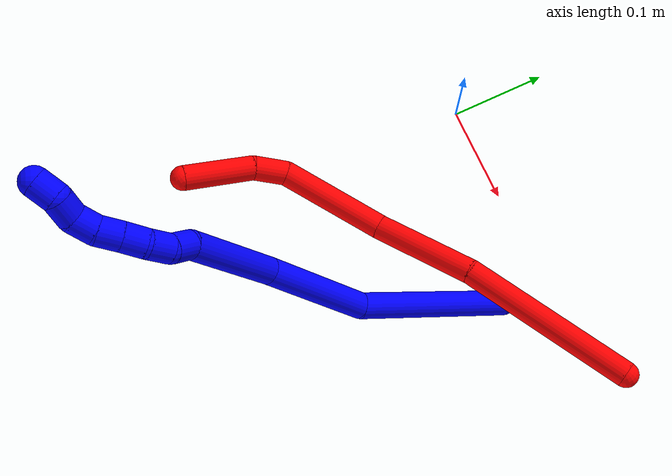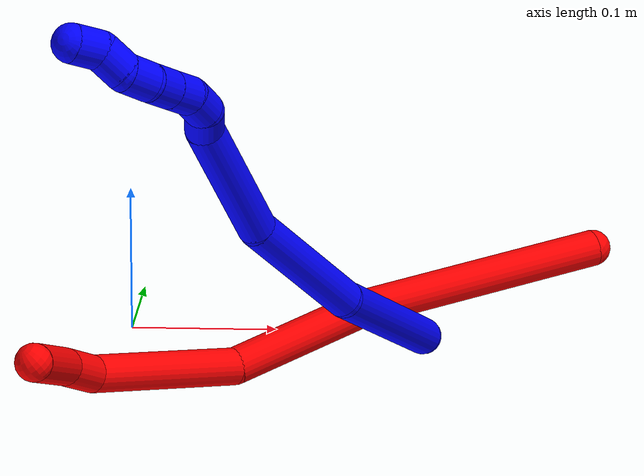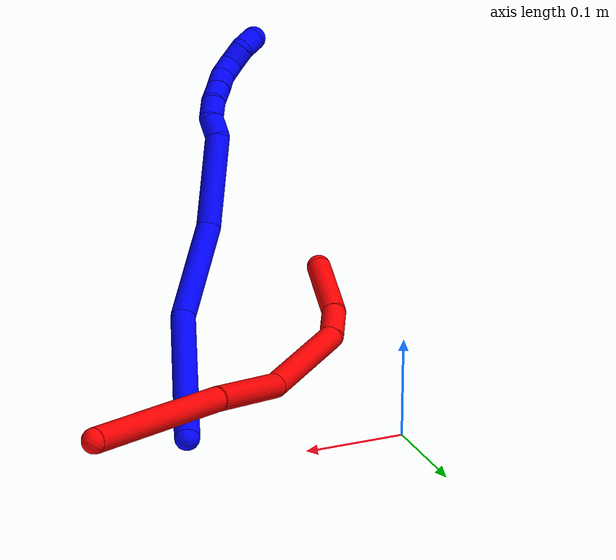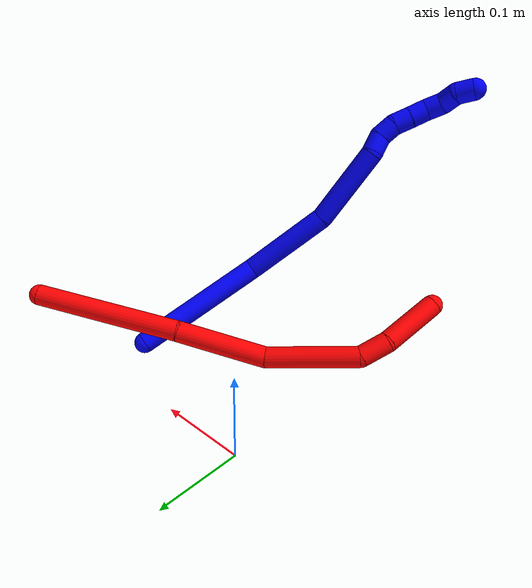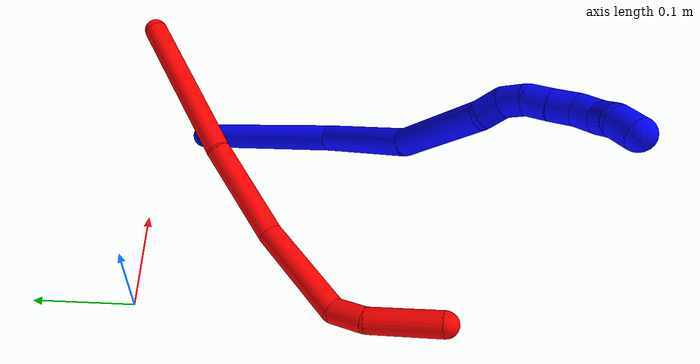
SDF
<sdf version="1.7">
 <world name="default">
  <plugin name="TubeGeneratorPlugin" filename="libtube_generator_plugin.so"/>
  <model name="photoneo_s_sensor">
   <static>1</static>
   <pose>0 0 2 1.57079 1.57079 3.14159</pose>
   <link name="link">
    <inertial><mass>0.1</mass></inertial>
    <sensor name="sensor" type="depth">
     <update_rate>30</update_rate>
     <camera>
      <horizontal_fov>1.22</horizontal_fov>
      <image><width>1920</width><height>1200</height><format>B8G8R8</format></image>
      <clip><near>0.1</near><far>4</far></clip>
      <depth_camera><output>points</output></depth_camera>
     </camera>
     <plugin name="camera_plugin" filename="libgazebo_ros_depth_camera.so">
      <baseline>0.2</baseline>
      <alwaysOn>1</alwaysOn>
      <updateRate>0.0</updateRate>
      <cameraName>camera_ir</cameraName>
      <imageTopicName>/camera/color/image_raw</imageTopicName>
      <cameraInfoTopicName>/camera/color/camera_info</cameraInfoTopicName>
      <depthImageTopicName>/camera/depth/image_raw</depthImageTopicName>
      <depthImageCameraInfoTopicName>/camera/depth/camera_info</depthImageCameraInfoTopicName>
      <pointCloudTopicName>/camera/depth/points</pointCloudTopicName>
      <frameName>fr_optical</frameName>
      <pointCloudCutoff>0.1</pointCloudCutoff>
      <pointCloudCutoffMax>2.0</pointCloudCutoffMax>
      <distortionK1>0</distortionK1>
      <distortionK2>0</distortionK2>
      <distortionK3>0</distortionK3>
      <distortionT1>0</distortionT1>
      <distortionT2>0</distortionT2>
      <CxPrime>0</CxPrime>
      <Cx>0</Cx>
      <Cy>0</Cy>
      <focalLength>0</focalLength>
      <hackBaseline>0</hackBaseline>
     </plugin>
    </sensor>
   </link>
  </model>
  <gravity>0 0 -9.8</gravity>
  <magnetic_field>6e-06 2.3e-05 -4.2e-05</magnetic_field>
  <atmosphere type="adiabatic"/>
  <physics name="default_physics" default="0" type="ode">
   <max_step_size>0.003</max_step_size>
   <real_time_factor>1</real_time_factor>
   <real_time_update_rate>1000</real_time_update_rate>
   <max_contacts>10000</max_contacts>
   <ode>
    <solver>
     <type>quick</type>
     <iters>100</iters>
     <sor>1.3</sor>
     <use_dynamic_moi_rescaling>0</use_dynamic_moi_rescaling>
    </solver>
    <constraints>
     <contact_max_correcting_vel>0</contact_max_correcting_vel>
     <contact_surface_layer>0.001</contact_surface_layer>
     <cfm>0</cfm>
     <erp>0.2</erp>
    </constraints>
   </ode>
  </physics>
  <scene><ambient>0.4 0.4 0.4 1</ambient><background>0.7 0.7 0.7 1</background><shadows>0</shadows></scene>
  <audio><device>default</device></audio>
  <spherical_coordinates>
   <surface_model>EARTH_WGS84</surface_model>
   <latitude_deg>0</latitude_deg>
   <longitude_deg>0</longitude_deg>
   <elevation>0</elevation>
   <heading_deg>0</heading_deg>
  </spherical_coordinates>
  <model name="bin">
   <static>1</static>
   <link name="bottom">
    <collision name="collision-bottom">
     <pose>0 0 -0.01 0 -0 0</pose>
     <geometry><box><size>0.8 0.6 0.02</size></box></geometry>
     <surface>
      <friction><ode><mu>100</mu><mu2>100</mu2></ode></friction>
      <contact><collide_bitmask>65535</collide_bitmask></contact>
     </surface>
    </collision>
   </link>
   <link name="west_wall">
    <collision name="collision-west_wall">
     <pose>-0.41 0 0.1 0 -0 0</pose>
     <geometry><box><size>0.02 0.6 0.2</size></box></geometry>
     <surface>
      <friction><ode><mu>100</mu><mu2>100</mu2></ode></friction>
      <contact><collide_bitmask>65535</collide_bitmask></contact>
     </surface>
    </collision>
   </link>
   <link name="east_wall">
    <collision name="collision-east_wall">
     <pose>0.41 0 0.1 0 -0 0</pose>
     <geometry><box><size>0.02 0.6 0.2</size></box></geometry>
     <surface>
      <friction><ode><mu>100</mu><mu2>100</mu2></ode></friction>
      <contact><collide_bitmask>65535</collide_bitmask></contact>
     </surface>
    </collision>
   </link>
   <link name="south_wall">
    <collision name="collision-south_wall">
     <pose>0 -0.31 0.1 0 -0 0</pose>
     <geometry><box><size>0.8 0.02 0.2</size></box></geometry>
     <surface>
      <friction><ode><mu>100</mu><mu2>100</mu2></ode></friction>
      <contact><collide_bitmask>65535</collide_bitmask></contact>
     </surface>
    </collision>
   </link>
   <link name="north_wall">
    <collision name="collision-north_wall">
     <pose>0 0.31 0.1 0 -0 0</pose>
     <geometry><box><size>0.8 0.02 0.2</size></box></geometry>
     <surface>
      <friction><ode><mu>100</mu><mu2>100</mu2></ode></friction>
      <contact><collide_bitmask>65535</collide_bitmask></contact>
     </surface>
    </collision>
   </link>
  </model>
  <model name="1">
   <static>0</static>
   <link name="1">
    <collision name="collision-cylinder-e_1_1_4">
     <pose>-0.000902 -0.000366 0.078689 0.004654 -0.011465 -2.7e-05</pose>
     <geometry><cylinder><radius>0.0125</radius><length>0.157391</length></cylinder></geometry>
     <surface>
      <friction><ode><mu>1.16</mu><mu2>1.16</mu2><slip1>0</slip1><slip2>0</slip2></ode></friction>
      <contact><ode><kp>1e+06</kp><kd>1</kd><max_vel>0</max_vel><min_depth>0.001</min_depth></ode></contact>
     </surface>
    </collision>
    <visual name="visual-cylinder-e_1_1_4">
     <pose>-0.000902 -0.000366 0.078689 0.004654 -0.011465 -2.7e-05</pose>
     <geometry><cylinder><radius>0.0125</radius><length>0.157391</length></cylinder></geometry>
     <material><ambient>0 0 1 1</ambient></material>
    </visual>
    <collision name="collision-cylinder-e_2_4_5">
     <pose>-0.005288 -0.020066 0.206226 0.37687 -0.066211 -0.012631</pose>
     <geometry><cylinder><radius>0.0125</radius><length>0.105298</length></cylinder></geometry>
     <surface>
      <friction><ode><mu>1.16</mu><mu2>1.16</mu2><slip1>0</slip1><slip2>0</slip2></ode></friction>
      <contact><ode><kp>1e+06</kp><kd>1</kd><max_vel>0</max_vel><min_depth>0.001</min_depth></ode></contact>
     </surface>
    </collision>
    <visual name="visual-cylinder-e_2_4_5">
     <pose>-0.005288 -0.020066 0.206226 0.37687 -0.066211 -0.012631</pose>
     <geometry><cylinder><radius>0.0125</radius><length>0.105298</length></cylinder></geometry>
     <material><ambient>0 0 1 1</ambient></material>
    </visual>
    <collision name="collision-cylinder-e_3_5_6">
     <pose>-0.025183 -0.057482 0.296159 0.414621 -0.350508 -0.074453</pose>
     <geometry><cylinder><radius>0.0125</radius><length>0.095593</length></cylinder></geometry>
     <surface>
      <friction><ode><mu>1.16</mu><mu2>1.16</mu2><slip1>0</slip1><slip2>0</slip2></ode></friction>
      <contact><ode><kp>1e+06</kp><kd>1</kd><max_vel>0</max_vel><min_depth>0.001</min_depth></ode></contact>
     </surface>
    </collision>
    <visual name="visual-cylinder-e_3_5_6">
     <pose>-0.025183 -0.057482 0.296159 0.414621 -0.350508 -0.074453</pose>
     <geometry><cylinder><radius>0.0125</radius><length>0.095593</length></cylinder></geometry>
     <material><ambient>0 0 1 1</ambient></material>
    </visual>
    <collision name="collision-cylinder-e_4_6_7">
     <pose>-0.046887 -0.075601 0.346412 0.003782 -0.523548 -0.001013</pose>
     <geometry><cylinder><radius>0.0125</radius><length>0.021167</length></cylinder></geometry>
     <surface>
      <friction><ode><mu>1.16</mu><mu2>1.16</mu2><slip1>0</slip1><slip2>0</slip2></ode></friction>
      <contact><ode><kp>1e+06</kp><kd>1</kd><max_vel>0</max_vel><min_depth>0.001</min_depth></ode></contact>
     </surface>
    </collision>
    <visual name="visual-cylinder-e_4_6_7">
     <pose>-0.046887 -0.075601 0.346412 0.003782 -0.523548 -0.001013</pose>
     <geometry><cylinder><radius>0.0125</radius><length>0.021167</length></cylinder></geometry>
     <material><ambient>0 0 1 1</ambient></material>
    </visual>
    <collision name="collision-cylinder-e_5_7_8">
     <pose>-0.053558 -0.07821 0.365428 0.255675 -0.134673 -0.017337</pose>
     <geometry><cylinder><radius>0.0125</radius><length>0.020549</length></cylinder></geometry>
     <surface>
      <friction><ode><mu>1.16</mu><mu2>1.16</mu2><slip1>0</slip1><slip2>0</slip2></ode></friction>
      <contact><ode><kp>1e+06</kp><kd>1</kd><max_vel>0</max_vel><min_depth>0.001</min_depth></ode></contact>
     </surface>
    </collision>
    <visual name="visual-cylinder-e_5_7_8">
     <pose>-0.053558 -0.07821 0.365428 0.255675 -0.134673 -0.017337</pose>
     <geometry><cylinder><radius>0.0125</radius><length>0.020549</length></cylinder></geometry>
     <material><ambient>0 0 1 1</ambient></material>
    </visual>
    <collision name="collision-cylinder-e_6_8_9">
     <pose>-0.053314 -0.083059 0.384881 0.232548 0.162987 0.019079</pose>
     <geometry><cylinder><radius>0.0125</radius><length>0.02</length></cylinder></geometry>
     <surface>
      <friction><ode><mu>1.16</mu><mu2>1.16</mu2><slip1>0</slip1><slip2>0</slip2></ode></friction>
      <contact><ode><kp>1e+06</kp><kd>1</kd><max_vel>0</max_vel><min_depth>0.001</min_depth></ode></contact>
     </surface>
    </collision>
    <visual name="visual-cylinder-e_6_8_9">
     <pose>-0.053314 -0.083059 0.384881 0.232548 0.162987 0.019079</pose>
     <geometry><cylinder><radius>0.0125</radius><length>0.02</length></cylinder></geometry>
     <material><ambient>0 0 1 1</ambient></material>
    </visual>
    <collision name="collision-cylinder-e_7_9_10">
     <pose>-0.050307 -0.087329 0.404184 0.202943 0.138952 0.014171</pose>
     <geometry><cylinder><radius>0.0125</radius><length>0.020001</length></cylinder></geometry>
     <surface>
      <friction><ode><mu>1.16</mu><mu2>1.16</mu2><slip1>0</slip1><slip2>0</slip2></ode></friction>
      <contact><ode><kp>1e+06</kp><kd>1</kd><max_vel>0</max_vel><min_depth>0.001</min_depth></ode></contact>
     </surface>
    </collision>
    <visual name="visual-cylinder-e_7_9_10">
     <pose>-0.050307 -0.087329 0.404184 0.202943 0.138952 0.014171</pose>
     <geometry><cylinder><radius>0.0125</radius><length>0.020001</length></cylinder></geometry>
     <material><ambient>0 0 1 1</ambient></material>
    </visual>
    <collision name="collision-cylinder-e_8_10_11">
     <pose>-0.046931 -0.093701 0.422654 0.462759 0.200409 0.047366</pose>
     <geometry><cylinder><radius>0.0125</radius><length>0.02</length></cylinder></geometry>
     <surface>
      <friction><ode><mu>1.16</mu><mu2>1.16</mu2><slip1>0</slip1><slip2>0</slip2></ode></friction>
      <contact><ode><kp>1e+06</kp><kd>1</kd><max_vel>0</max_vel><min_depth>0.001</min_depth></ode></contact>
     </surface>
    </collision>
    <visual name="visual-cylinder-e_8_10_11">
     <pose>-0.046931 -0.093701 0.422654 0.462759 0.200409 0.047366</pose>
     <geometry><cylinder><radius>0.0125</radius><length>0.02</length></cylinder></geometry>
     <material><ambient>0 0 1 1</ambient></material>
    </visual>
    <collision name="collision-cylinder-e_9_11_12">
     <pose>-0.045568 -0.105846 0.437687 0.892347 -0.062875 -0.030084</pose>
     <geometry><cylinder><radius>0.0125</radius><length>0.020001</length></cylinder></geometry>
     <surface>
      <friction><ode><mu>1.16</mu><mu2>1.16</mu2><slip1>0</slip1><slip2>0</slip2></ode></friction>
      <contact><ode><kp>1e+06</kp><kd>1</kd><max_vel>0</max_vel><min_depth>0.001</min_depth></ode></contact>
     </surface>
    </collision>
    <visual name="visual-cylinder-e_9_11_12">
     <pose>-0.045568 -0.105846 0.437687 0.892347 -0.062875 -0.030084</pose>
     <geometry><cylinder><radius>0.0125</radius><length>0.020001</length></cylinder></geometry>
     <material><ambient>0 0 1 1</ambient></material>
    </visual>
    <collision name="collision-cylinder-e_10_12_2">
     <pose>-0.04276 -0.118747 0.451815 0.578046 0.350869 0.105317</pose>
     <geometry><cylinder><radius>0.0125</radius><length>0.02</length></cylinder></geometry>
     <surface>
      <friction><ode><mu>1.16</mu><mu2>1.16</mu2><slip1>0</slip1><slip2>0</slip2></ode></friction>
      <contact><ode><kp>1e+06</kp><kd>1</kd><max_vel>0</max_vel><min_depth>0.001</min_depth></ode></contact>
     </surface>
    </collision>
    <visual name="visual-cylinder-e_10_12_2">
     <pose>-0.04276 -0.118747 0.451815 0.578046 0.350869 0.105317</pose>
     <geometry><cylinder><radius>0.0125</radius><length>0.02</length></cylinder></geometry>
     <material><ambient>0 0 1 1</ambient></material>
    </visual>
    <collision name="collision-sphere-2">
     <pose>-0.039323 -0.123878 0.45968 0 -0 0</pose>
     <geometry><sphere><radius>0.0125</radius></sphere></geometry>
     <surface>
      <friction><ode><mu>1.16</mu><mu2>1.16</mu2><slip1>0</slip1><slip2>0</slip2></ode></friction>
      <contact><ode><kp>1e+06</kp><kd>1</kd><max_vel>0</max_vel><min_depth>0.001</min_depth></ode></contact>
     </surface>
    </collision>
    <visual name="visual-sphere-2">
     <pose>-0.039323 -0.123878 0.45968 0 -0 0</pose>
     <geometry><sphere><radius>0.0125</radius></sphere></geometry>
     <material><ambient>0 0 1 1</ambient></material>
    </visual>
    <collision name="collision-sphere-12">
     <pose>-0.046197 -0.113616 0.44395 0 -0 0</pose>
     <geometry><sphere><radius>0.0125</radius></sphere></geometry>
     <surface>
      <friction><ode><mu>1.16</mu><mu2>1.16</mu2><slip1>0</slip1><slip2>0</slip2></ode></friction>
      <contact><ode><kp>1e+06</kp><kd>1</kd><max_vel>0</max_vel><min_depth>0.001</min_depth></ode></contact>
     </surface>
    </collision>
    <visual name="visual-sphere-12">
     <pose>-0.046197 -0.113616 0.44395 0 -0 0</pose>
     <geometry><sphere><radius>0.0125</radius></sphere></geometry>
     <material><ambient>0 0 1 1</ambient></material>
    </visual>
    <collision name="collision-sphere-11">
     <pose>-0.04494 -0.098075 0.431423 0 -0 0</pose>
     <geometry><sphere><radius>0.0125</radius></sphere></geometry>
     <surface>
      <friction><ode><mu>1.16</mu><mu2>1.16</mu2><slip1>0</slip1><slip2>0</slip2></ode></friction>
      <contact><ode><kp>1e+06</kp><kd>1</kd><max_vel>0</max_vel><min_depth>0.001</min_depth></ode></contact>
     </surface>
    </collision>
    <visual name="visual-sphere-11">
     <pose>-0.04494 -0.098075 0.431423 0 -0 0</pose>
     <geometry><sphere><radius>0.0125</radius></sphere></geometry>
     <material><ambient>0 0 1 1</ambient></material>
    </visual>
    <collision name="collision-sphere-10">
     <pose>-0.048922 -0.089326 0.413884 0 -0 0</pose>
     <geometry><sphere><radius>0.0125</radius></sphere></geometry>
     <surface>
      <friction><ode><mu>1.16</mu><mu2>1.16</mu2><slip1>0</slip1><slip2>0</slip2></ode></friction>
      <contact><ode><kp>1e+06</kp><kd>1</kd><max_vel>0</max_vel><min_depth>0.001</min_depth></ode></contact>
     </surface>
    </collision>
    <visual name="visual-sphere-10">
     <pose>-0.048922 -0.089326 0.413884 0 -0 0</pose>
     <geometry><sphere><radius>0.0125</radius></sphere></geometry>
     <material><ambient>0 0 1 1</ambient></material>
    </visual>
    <collision name="collision-sphere-9">
     <pose>-0.051692 -0.085333 0.394483 0 -0 0</pose>
     <geometry><sphere><radius>0.0125</radius></sphere></geometry>
     <surface>
      <friction><ode><mu>1.16</mu><mu2>1.16</mu2><slip1>0</slip1><slip2>0</slip2></ode></friction>
      <contact><ode><kp>1e+06</kp><kd>1</kd><max_vel>0</max_vel><min_depth>0.001</min_depth></ode></contact>
     </surface>
    </collision>
    <visual name="visual-sphere-9">
     <pose>-0.051692 -0.085333 0.394483 0 -0 0</pose>
     <geometry><sphere><radius>0.0125</radius></sphere></geometry>
     <material><ambient>0 0 1 1</ambient></material>
    </visual>
    <collision name="collision-sphere-4">
     <pose>-0.001804 -0.000733 0.157379 0 -0 0</pose>
     <geometry><sphere><radius>0.0125</radius></sphere></geometry>
     <surface>
      <friction><ode><mu>1.16</mu><mu2>1.16</mu2><slip1>0</slip1><slip2>0</slip2></ode></friction>
      <contact><ode><kp>1e+06</kp><kd>1</kd><max_vel>0</max_vel><min_depth>0.001</min_depth></ode></contact>
     </surface>
    </collision>
    <visual name="visual-sphere-4">
     <pose>-0.001804 -0.000733 0.157379 0 -0 0</pose>
     <geometry><sphere><radius>0.0125</radius></sphere></geometry>
     <material><ambient>0 0 1 1</ambient></material>
    </visual>
    <collision name="collision-sphere-1">
     <geometry><sphere><radius>0.0125</radius></sphere></geometry>
     <surface>
      <friction><ode><mu>1.16</mu><mu2>1.16</mu2><slip1>0</slip1><slip2>0</slip2></ode></friction>
      <contact><ode><kp>1e+06</kp><kd>1</kd><max_vel>0</max_vel><min_depth>0.001</min_depth></ode></contact>
     </surface>
    </collision>
    <visual name="visual-sphere-1">
     <geometry><sphere><radius>0.0125</radius></sphere></geometry>
     <material><ambient>0 0 1 1</ambient></material>
    </visual>
    <collision name="collision-sphere-8">
     <pose>-0.054937 -0.080785 0.375279 0 -0 0</pose>
     <geometry><sphere><radius>0.0125</radius></sphere></geometry>
     <surface>
      <friction><ode><mu>1.16</mu><mu2>1.16</mu2><slip1>0</slip1><slip2>0</slip2></ode></friction>
      <contact><ode><kp>1e+06</kp><kd>1</kd><max_vel>0</max_vel><min_depth>0.001</min_depth></ode></contact>
     </surface>
    </collision>
    <visual name="visual-sphere-8">
     <pose>-0.054937 -0.080785 0.375279 0 -0 0</pose>
     <geometry><sphere><radius>0.0125</radius></sphere></geometry>
     <material><ambient>0 0 1 1</ambient></material>
    </visual>
    <collision name="collision-sphere-5">
     <pose>-0.008771 -0.039399 0.255073 0 -0 0</pose>
     <geometry><sphere><radius>0.0125</radius></sphere></geometry>
     <surface>
      <friction><ode><mu>1.16</mu><mu2>1.16</mu2><slip1>0</slip1><slip2>0</slip2></ode></friction>
      <contact><ode><kp>1e+06</kp><kd>1</kd><max_vel>0</max_vel><min_depth>0.001</min_depth></ode></contact>
     </surface>
    </collision>
    <visual name="visual-sphere-5">
     <pose>-0.008771 -0.039399 0.255073 0 -0 0</pose>
     <geometry><sphere><radius>0.0125</radius></sphere></geometry>
     <material><ambient>0 0 1 1</ambient></material>
    </visual>
    <collision name="collision-sphere-6">
     <pose>-0.041595 -0.075566 0.337246 0 -0 0</pose>
     <geometry><sphere><radius>0.0125</radius></sphere></geometry>
     <surface>
      <friction><ode><mu>1.16</mu><mu2>1.16</mu2><slip1>0</slip1><slip2>0</slip2></ode></friction>
      <contact><ode><kp>1e+06</kp><kd>1</kd><max_vel>0</max_vel><min_depth>0.001</min_depth></ode></contact>
     </surface>
    </collision>
    <visual name="visual-sphere-6">
     <pose>-0.041595 -0.075566 0.337246 0 -0 0</pose>
     <geometry><sphere><radius>0.0125</radius></sphere></geometry>
     <material><ambient>0 0 1 1</ambient></material>
    </visual>
    <collision name="collision-sphere-7">
     <pose>-0.052178 -0.075635 0.355578 0 -0 0</pose>
     <geometry><sphere><radius>0.0125</radius></sphere></geometry>
     <surface>
      <friction><ode><mu>1.16</mu><mu2>1.16</mu2><slip1>0</slip1><slip2>0</slip2></ode></friction>
      <contact><ode><kp>1e+06</kp><kd>1</kd><max_vel>0</max_vel><min_depth>0.001</min_depth></ode></contact>
     </surface>
    </collision>
    <visual name="visual-sphere-7">
     <pose>-0.052178 -0.075635 0.355578 0 -0 0</pose>
     <geometry><sphere><radius>0.0125</radius></sphere></geometry>
     <material><ambient>0 0 1 1</ambient></material>
    </visual>
    <inertial>
     <pose>-0.019954 -0.041293 0.238556 0 -0 0</pose>
     <mass>0.5</mass>
     <inertia>
      <ixx>0.000504</ixx>
      <ixy>0</ixy>
      <ixz>0</ixz>
      <iyy>0.000489</iyy>
      <iyz>0</iyz>
      <izz>0.000144</izz>
     </inertia>
    </inertial>
   </link>
   <pose>0.2031 -0.048624 0.011481 -0.909413 0.853729 -2.95156</pose>
  </model>
  <model name="2">
   <static>0</static>
   <link name="2">
    <collision name="collision-cylinder-e_1_1_4">
     <pose>-0.046311 -0.060264 -0.044557 2.20746 -0.553495 -1.02591</pose>
     <geometry><cylinder><radius>0.0125</radius><length>0.176202</length></cylinder></geometry>
     <surface>
      <friction><ode><mu>1.16</mu><mu2>1.16</mu2><slip1>0</slip1><slip2>0</slip2></ode></friction>
      <contact><ode><kp>1e+06</kp><kd>1</kd><max_vel>0</max_vel><min_depth>0.001</min_depth></ode></contact>
     </surface>
    </collision>
    <visual name="visual-cylinder-e_1_1_4">
     <pose>-0.046311 -0.060264 -0.044557 2.20746 -0.553495 -1.02591</pose>
     <geometry><cylinder><radius>0.0125</radius><length>0.176202</length></cylinder></geometry>
     <material><ambient>1 0 0 1</ambient></material>
    </visual>
    <collision name="collision-cylinder-e_2_4_5">
     <pose>-0.12607 -0.156358 -0.109745 2.09324 -0.680176 -1.09846</pose>
     <geometry><cylinder><radius>0.0125</radius><length>0.106361</length></cylinder></geometry>
     <surface>
      <friction><ode><mu>1.16</mu><mu2>1.16</mu2><slip1>0</slip1><slip2>0</slip2></ode></friction>
      <contact><ode><kp>1e+06</kp><kd>1</kd><max_vel>0</max_vel><min_depth>0.001</min_depth></ode></contact>
     </surface>
    </collision>
    <visual name="visual-cylinder-e_2_4_5">
     <pose>-0.12607 -0.156358 -0.109745 2.09324 -0.680176 -1.09846</pose>
     <geometry><cylinder><radius>0.0125</radius><length>0.106361</length></cylinder></geometry>
     <material><ambient>1 0 0 1</ambient></material>
    </visual>
    <collision name="collision-cylinder-e_3_5_6">
     <pose>-0.189862 -0.218988 -0.167704 2.5189 -0.583636 -1.50197</pose>
     <geometry><cylinder><radius>0.0125</radius><length>0.110135</length></cylinder></geometry>
     <surface>
      <friction><ode><mu>1.16</mu><mu2>1.16</mu2><slip1>0</slip1><slip2>0</slip2></ode></friction>
      <contact><ode><kp>1e+06</kp><kd>1</kd><max_vel>0</max_vel><min_depth>0.001</min_depth></ode></contact>
     </surface>
    </collision>
    <visual name="visual-cylinder-e_3_5_6">
     <pose>-0.189862 -0.218988 -0.167704 2.5189 -0.583636 -1.50197</pose>
     <geometry><cylinder><radius>0.0125</radius><length>0.110135</length></cylinder></geometry>
     <material><ambient>1 0 0 1</ambient></material>
    </visual>
    <collision name="collision-cylinder-e_4_6_7">
     <pose>-0.232145 -0.245599 -0.217807 -3.12673 -0.751418 3.10392</pose>
     <geometry><cylinder><radius>0.0125</radius><length>0.03497</length></cylinder></geometry>
     <surface>
      <friction><ode><mu>1.16</mu><mu2>1.16</mu2><slip1>0</slip1><slip2>0</slip2></ode></friction>
      <contact><ode><kp>1e+06</kp><kd>1</kd><max_vel>0</max_vel><min_depth>0.001</min_depth></ode></contact>
     </surface>
    </collision>
    <visual name="visual-cylinder-e_4_6_7">
     <pose>-0.232145 -0.245599 -0.217807 -3.12673 -0.751418 3.10392</pose>
     <geometry><cylinder><radius>0.0125</radius><length>0.03497</length></cylinder></geometry>
     <material><ambient>1 0 0 1</ambient></material>
    </visual>
    <collision name="collision-cylinder-e_5_7_2">
     <pose>-0.27313 -0.237427 -0.250592 -2.76201 -0.932676 2.41244</pose>
     <geometry><cylinder><radius>0.0125</radius><length>0.072332</length></cylinder></geometry>
     <surface>
      <friction><ode><mu>1.16</mu><mu2>1.16</mu2><slip1>0</slip1><slip2>0</slip2></ode></friction>
      <contact><ode><kp>1e+06</kp><kd>1</kd><max_vel>0</max_vel><min_depth>0.001</min_depth></ode></contact>
     </surface>
    </collision>
    <visual name="visual-cylinder-e_5_7_2">
     <pose>-0.27313 -0.237427 -0.250592 -2.76201 -0.932676 2.41244</pose>
     <geometry><cylinder><radius>0.0125</radius><length>0.072332</length></cylinder></geometry>
     <material><ambient>1 0 0 1</ambient></material>
    </visual>
    <collision name="collision-sphere-2">
     <pose>-0.302179 -0.229444 -0.270602 0 -0 0</pose>
     <geometry><sphere><radius>0.0125</radius></sphere></geometry>
     <surface>
      <friction><ode><mu>1.16</mu><mu2>1.16</mu2><slip1>0</slip1><slip2>0</slip2></ode></friction>
      <contact><ode><kp>1e+06</kp><kd>1</kd><max_vel>0</max_vel><min_depth>0.001</min_depth></ode></contact>
     </surface>
    </collision>
    <visual name="visual-sphere-2">
     <pose>-0.302179 -0.229444 -0.270602 0 -0 0</pose>
     <geometry><sphere><radius>0.0125</radius></sphere></geometry>
     <material><ambient>1 0 0 1</ambient></material>
    </visual>
    <collision name="collision-sphere-7">
     <pose>-0.244081 -0.245409 -0.230582 0 -0 0</pose>
     <geometry><sphere><radius>0.0125</radius></sphere></geometry>
     <surface>
      <friction><ode><mu>1.16</mu><mu2>1.16</mu2><slip1>0</slip1><slip2>0</slip2></ode></friction>
      <contact><ode><kp>1e+06</kp><kd>1</kd><max_vel>0</max_vel><min_depth>0.001</min_depth></ode></contact>
     </surface>
    </collision>
    <visual name="visual-sphere-7">
     <pose>-0.244081 -0.245409 -0.230582 0 -0 0</pose>
     <geometry><sphere><radius>0.0125</radius></sphere></geometry>
     <material><ambient>1 0 0 1</ambient></material>
    </visual>
    <collision name="collision-sphere-6">
     <pose>-0.220208 -0.245789 -0.205032 0 -0 0</pose>
     <geometry><sphere><radius>0.0125</radius></sphere></geometry>
     <surface>
      <friction><ode><mu>1.16</mu><mu2>1.16</mu2><slip1>0</slip1><slip2>0</slip2></ode></friction>
      <contact><ode><kp>1e+06</kp><kd>1</kd><max_vel>0</max_vel><min_depth>0.001</min_depth></ode></contact>
     </surface>
    </collision>
    <visual name="visual-sphere-6">
     <pose>-0.220208 -0.245789 -0.205032 0 -0 0</pose>
     <geometry><sphere><radius>0.0125</radius></sphere></geometry>
     <material><ambient>1 0 0 1</ambient></material>
    </visual>
    <collision name="collision-sphere-5">
     <pose>-0.159517 -0.192188 -0.130377 0 -0 0</pose>
     <geometry><sphere><radius>0.0125</radius></sphere></geometry>
     <surface>
      <friction><ode><mu>1.16</mu><mu2>1.16</mu2><slip1>0</slip1><slip2>0</slip2></ode></friction>
      <contact><ode><kp>1e+06</kp><kd>1</kd><max_vel>0</max_vel><min_depth>0.001</min_depth></ode></contact>
     </surface>
    </collision>
    <visual name="visual-sphere-5">
     <pose>-0.159517 -0.192188 -0.130377 0 -0 0</pose>
     <geometry><sphere><radius>0.0125</radius></sphere></geometry>
     <material><ambient>1 0 0 1</ambient></material>
    </visual>
    <collision name="collision-sphere-1">
     <geometry><sphere><radius>0.0125</radius></sphere></geometry>
     <surface>
      <friction><ode><mu>1.16</mu><mu2>1.16</mu2><slip1>0</slip1><slip2>0</slip2></ode></friction>
      <contact><ode><kp>1e+06</kp><kd>1</kd><max_vel>0</max_vel><min_depth>0.001</min_depth></ode></contact>
     </surface>
    </collision>
    <visual name="visual-sphere-1">
     <geometry><sphere><radius>0.0125</radius></sphere></geometry>
     <material><ambient>1 0 0 1</ambient></material>
    </visual>
    <collision name="collision-sphere-4">
     <pose>-0.092623 -0.120527 -0.089114 0 -0 0</pose>
     <geometry><sphere><radius>0.0125</radius></sphere></geometry>
     <surface>
      <friction><ode><mu>1.16</mu><mu2>1.16</mu2><slip1>0</slip1><slip2>0</slip2></ode></friction>
      <contact><ode><kp>1e+06</kp><kd>1</kd><max_vel>0</max_vel><min_depth>0.001</min_depth></ode></contact>
     </surface>
    </collision>
    <visual name="visual-sphere-4">
     <pose>-0.092623 -0.120527 -0.089114 0 -0 0</pose>
     <geometry><sphere><radius>0.0125</radius></sphere></geometry>
     <material><ambient>1 0 0 1</ambient></material>
    </visual>
    <inertial>
     <pose>-0.140707 -0.154259 -0.127473 0 -0 0</pose>
     <mass>0.5</mass>
     <inertia>
      <ixx>-0.000286</ixx>
      <ixy>0</ixy>
      <ixz>0</ixz>
      <iyy>-0.000392</iyy>
      <iyz>0</iyz>
      <izz>0.000818</izz>
     </inertia>
    </inertial>
   </link>
   <pose>0.31797 0.016383 0.057155 2.55318 -0.294982 1.53114</pose>
  </model>
 </world>
</sdf>
